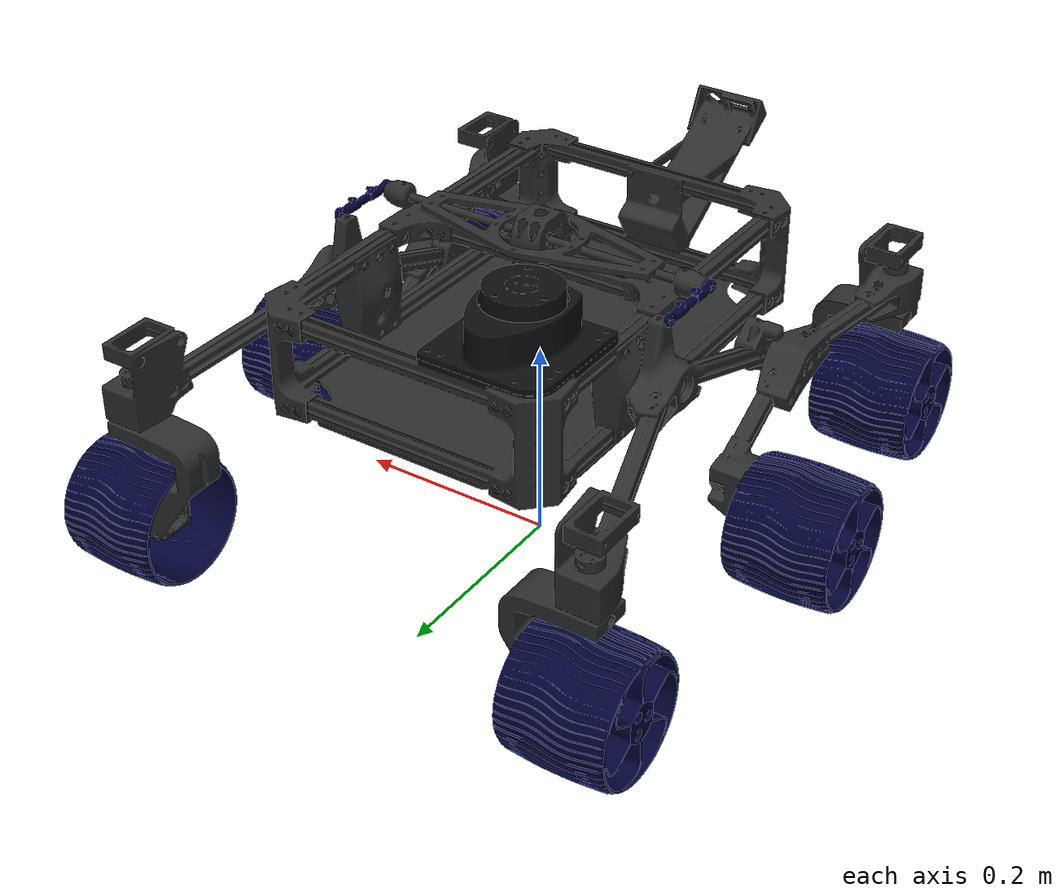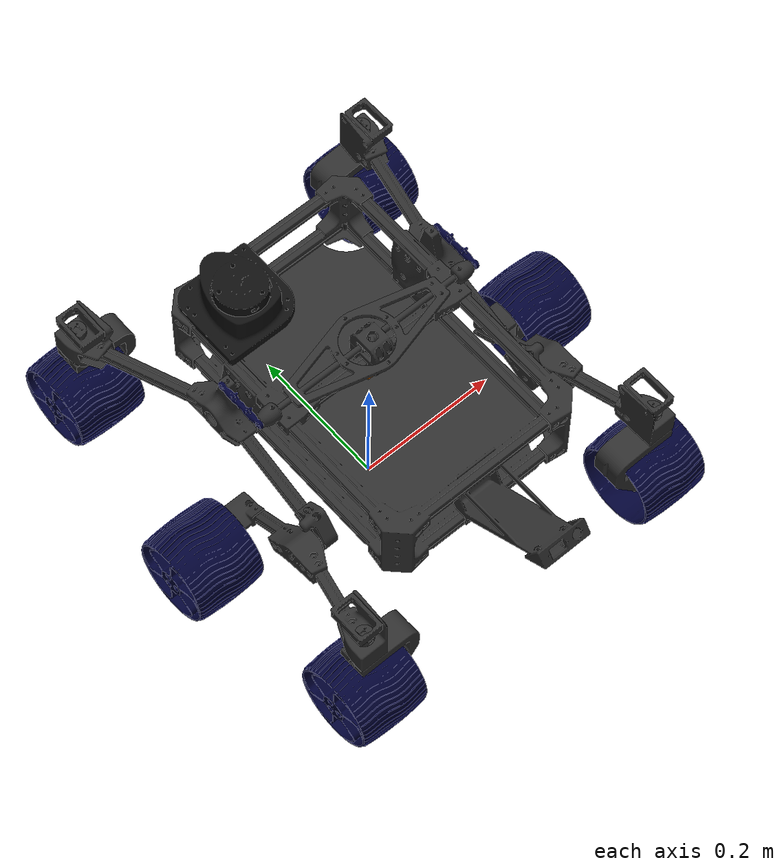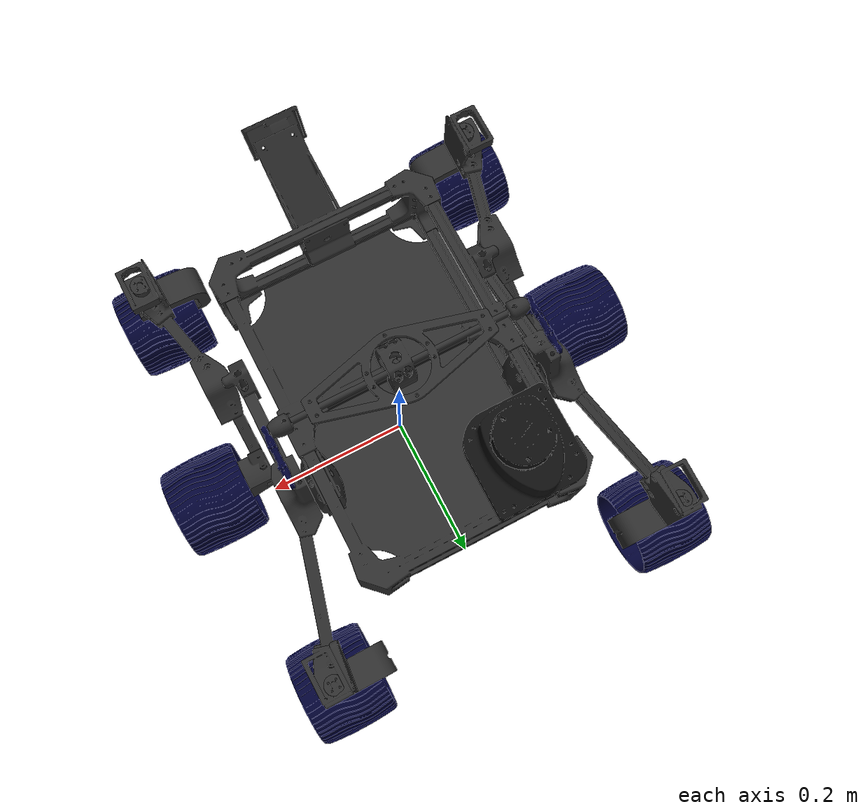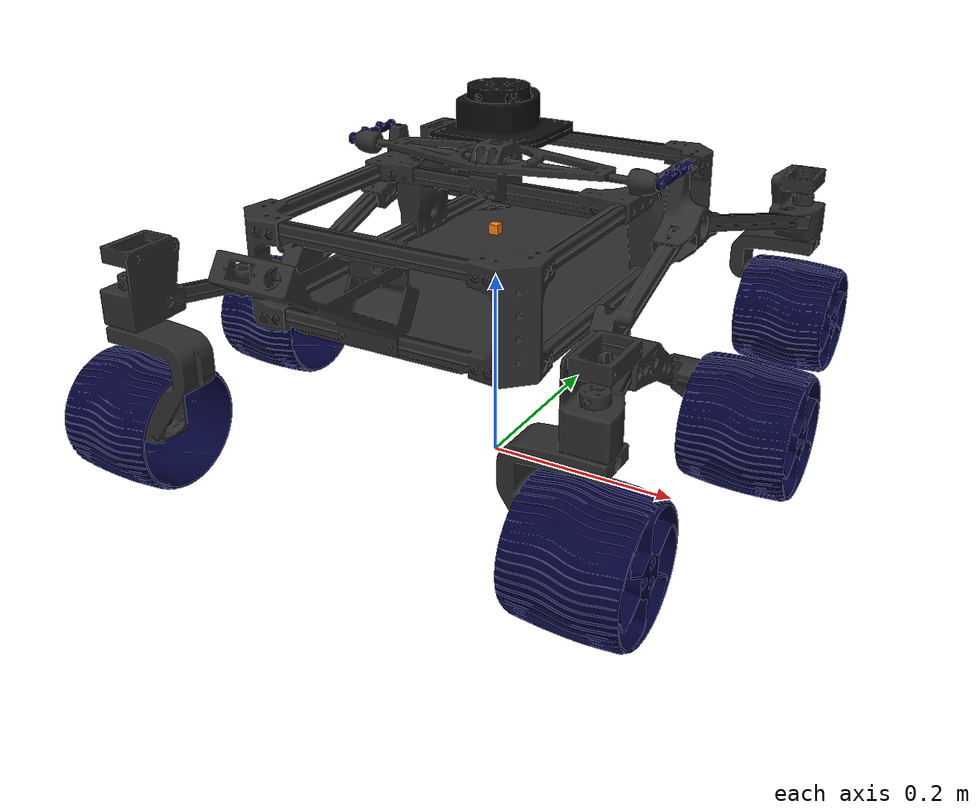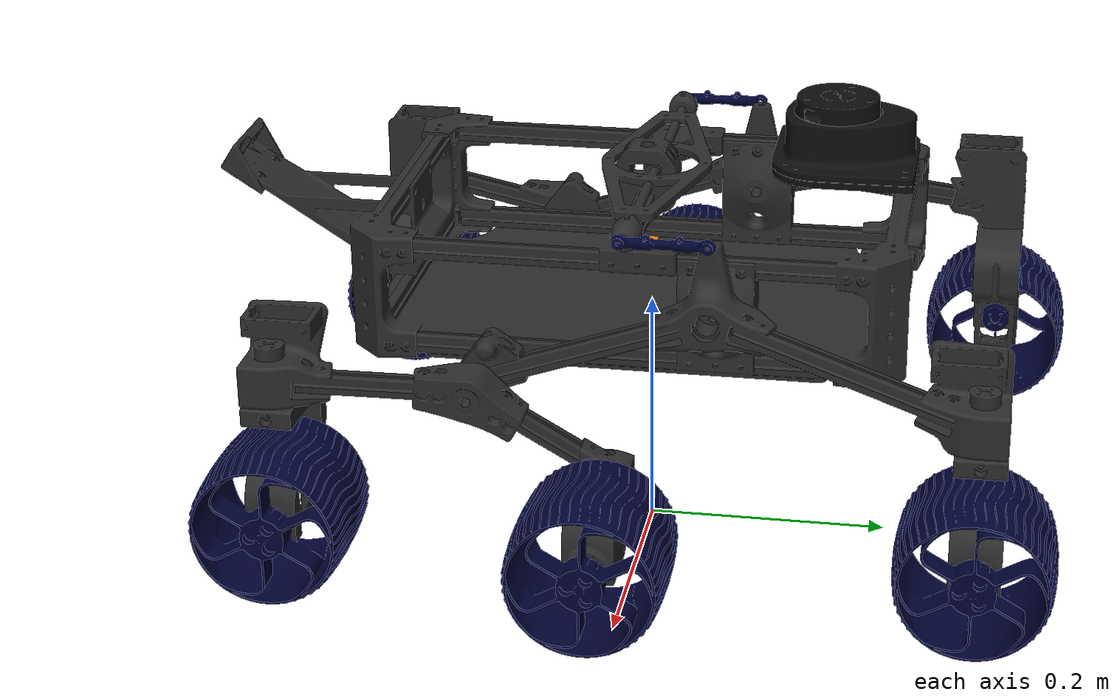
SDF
<sdf version="1.7">
 <world name="sawppy_playpen">
  <physics name="1ms" type="ignore">
   <max_step_size>0.001</max_step_size>
   <real_time_factor>1</real_time_factor>
  </physics>
  <plugin filename="gz-sim-physics-system" name="gz::sim::systems::Physics"/>
  <plugin filename="gz-sim-user-commands-system" name="gz::sim::systems::UserCommands"/>
  <plugin filename="gz-sim-scene-broadcaster-system" name="gz::sim::systems::SceneBroadcaster"/>
  <plugin filename="gz-sim-imu-system" name="gz::sim::systems::Imu"/>
  <scene><ambient>1.0 1.0 1.0</ambient><background>0.8 0.8 0.8</background></scene>
  <light type="directional" name="sun">
   <pose>0 0 10 0 0 0</pose>
   <diffuse>0.8 0.8 0.8 1</diffuse>
   <specular>0.8 0.8 0.8 1</specular>
   <attenuation>
    <range>1000</range>
    <constant>0.9</constant>
    <linear>0.01</linear>
    <quadratic>0.001</quadratic>
   </attenuation>
   <direction>-0.5 0.1 -0.9</direction>
  </light>
  <include><pose degrees="true">0 0 0.25 0 0 90</pose><uri>model://sawppy</uri></include>
 </world>
</sdf>

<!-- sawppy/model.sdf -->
<sdf version='1.7'>
  <model name='sawppy'>
    <pose>0 0 0.21 0 0 0</pose>
    <link name='base_link'>
      <inertial>
        <pose>0 0 0 0 0 0</pose>
        <mass>1.01</mass>
        <inertia>
          <ixx>0.00748967</ixx>
          <ixy>0</ixy>
          <ixz>0</ixz>
          <iyy>0.015773</iyy>
          <iyz>0</iyz>
          <izz>0.021821</izz>
        </inertia>
      </inertial>
      <collision name='base_link_collision'>
        <pose>0 0 0 0 0 0</pose>
        <geometry>
          <box>
            <size>0.01 0.01 0.01</size>
          </box>
        </geometry>
        <surface>
          <contact>
            <ode/>
          </contact>
          <friction>
            <ode/>
          </friction>
        </surface>
      </collision>
      <collision name='base_link_fixed_joint_lump__body_box_link_collision_1'>
        <pose>0 0 0 0 0 0</pose>
        <geometry>
          <box>
            <size>0.425 0.285 0.093</size>
          </box>
        </geometry>
        <surface>
          <contact>
            <ode/>
          </contact>
          <friction>
            <ode/>
          </friction>
        </surface>
      </collision>
      <visual name='base_link_visual'>
        <pose>0 0 0 0 0 0</pose>
        <geometry>
          <box>
            <size>0.01 0.01 0.01</size>
          </box>
        </geometry>
        <material>
          <ambient>1 0.5088 0.0468 1</ambient>
          <diffuse>1 0.5088 0.0468 1</diffuse>
          <specular>0.5 0.5 0.5 1</specular>
        </material>
      </visual>
      <visual name='base_link_fixed_joint_lump__body_box_link_visual_1'>
        <pose>0 0 0 0 0 0</pose>
        <geometry>
          <mesh>
            <scale>1 1 1</scale>
            <uri>model://sawppy/meshes/bases/body_box.stl</uri>
          </mesh>
        </geometry>
        <material>
          <ambient>0.175 0.175 0.175 1</ambient>
          <diffuse>0.175 0.175 0.175 1</diffuse>
          <specular>0.175 0.175 0.175 1</specular>
        </material>
      </visual>
      <velocity_decay/>
      <gravity>1</gravity>
      <velocity_decay/>
    </link>
    <joint name='diff_brace_joint' type='revolute'>
      <pose relative_to='base_link'>0 0 0.0681 0 0 0</pose>
      <parent>base_link</parent>
      <child>diff_brace_link</child>
      <axis>
        <xyz>0 0 1</xyz>
        <limit>
          <lower>-0.785398</lower>
          <upper>0.785398</upper>
          <effort>100</effort>
          <velocity>100</velocity>
        </limit>
        <dynamics>
          <spring_reference>0</spring_reference>
          <spring_stiffness>0</spring_stiffness>
          <damping>0.1</damping>
          <friction>0.1</friction>
        </dynamics>
      </axis>
      <physics>
        <provide_feedback>1</provide_feedback>
        <ode>
          <implicit_spring_damper>1</implicit_spring_damper>
          <cfm_damping>1</cfm_damping>
          <limit>
            <cfm>0</cfm>
            <erp>0.2</erp>
          </limit>
        </ode>
      </physics>
    </joint>
    <link name='diff_brace_link'>
      <pose relative_to='diff_brace_joint'>0 0 0 0 0 0</pose>
      <inertial>
        <pose degrees="true">0 0 0 0 0 90</pose>
        <mass>0.1</mass>
        <inertia>
          <ixx>3.75e-06</ixx>
          <ixy>0</ixy>
          <ixz>0</ixz>
          <iyy>0.000335208</iyy>
          <iyz>0</iyz>
          <izz>0.000335208</izz>
        </inertia>
      </inertial>
      <collision name='diff_brace_link_collision'>
        <pose degrees="true">0 0 0 0 0 90</pose>
        <geometry>
          <box>
            <size>0.2 0.015 0.015</size>
          </box>
        </geometry>
        <surface>
          <contact>
            <ode/>
          </contact>
          <friction>
            <ode/>
          </friction>
        </surface>
      </collision>
      <visual name='diff_brace_link_visual'>
        <pose>0 0 0 0 0 0</pose>
        <geometry>
          <mesh>
            <scale>1 1 1</scale>
            <uri>model://sawppy/meshes/bases/differential.stl</uri>
          </mesh>
        </geometry>
        <material>
          <ambient>0.175 0.175 0.175 1</ambient>
          <diffuse>0.175 0.175 0.175 1</diffuse>
          <specular>0.175 0.175 0.175 1</specular>
        </material>
      </visual>
      <gravity>1</gravity>
      <velocity_decay/>
    </link>
    <joint name='laser_joint' type='fixed'>
      <pose relative_to='base_link'>0.152 0.078 0.05 0 0 0</pose>
      <parent>base_link</parent>
      <child>laser</child>
      <axis>
        <dynamics>
          <spring_reference>0</spring_reference>
          <spring_stiffness>0</spring_stiffness>
        </dynamics>
        <xyz>0 0 1</xyz>
        <limit>
          <lower>-1e+16</lower>
          <upper>1e+16</upper>
        </limit>
      </axis>
      <physics>
        <ode>
          <limit>
            <cfm>0</cfm>
            <erp>0.2</erp>
          </limit>
        </ode>
      </physics>
    </joint>
    <link name='laser'>
      <pose relative_to='laser_joint'>0 0 0 0 0 0</pose>
      <inertial>
        <pose>0 0 0 0 0 0</pose>
        <mass>0.15</mass>
        <inertia>
          <ixx>9.09375e-05</ixx>
          <ixy>0</ixy>
          <ixz>0</ixz>
          <iyy>9.09375e-05</iyy>
          <iyz>0</iyz>
          <izz>9.1875e-05</izz>
        </inertia>
      </inertial>
      <collision name='laser_collision'>
        <pose>0 0 0 0 0 0</pose>
        <geometry>
          <cylinder>
            <length>0.06</length>
            <radius>0.035</radius>
          </cylinder>
        </geometry>
        <surface>
          <contact>
            <ode/>
          </contact>
          <friction>
            <ode/>
          </friction>
        </surface>
      </collision>
      <visual name='laser_visual'>
        <pose>0 0 0 0 0 0</pose>
        <geometry>
          <mesh>
            <scale>1 1 1</scale>
            <uri>model://sawppy/meshes/sensors/rplidar_a1_assembly_low.stl</uri>
          </mesh>
        </geometry>
        <material>
          <ambient>0.05 0.05 0.05 1</ambient>
          <diffuse>0.05 0.05 0.05 1</diffuse>
          <specular>0.001 0.001 0.001 1</specular>
        </material>
      </visual>
      <gravity>1</gravity>
      <velocity_decay/>
    </link>
    <joint name='left_rocker_joint' type='revolute'>
      <pose relative_to='base_link'>0.071 0.155 0.0118 0 0 0</pose>
      <parent>base_link</parent>
      <child>left_rocker_link</child>
      <axis>
        <xyz>0 1 0</xyz>
        <limit>
          <lower>0</lower>
          <upper>0</upper>
        </limit>
        <dynamics>
          <spring_reference>0</spring_reference>
          <spring_stiffness>0</spring_stiffness>
          <damping>0.1</damping>
          <friction>0.1</friction>
        </dynamics>
      </axis>
      <physics>
        <provide_feedback>1</provide_feedback>
        <ode>
          <implicit_spring_damper>1</implicit_spring_damper>
          <cfm_damping>1</cfm_damping>
          <limit>
            <cfm>0</cfm>
            <erp>0.2</erp>
          </limit>
        </ode>
      </physics>
    </joint>
    <link name='left_rocker_link'>
      <pose relative_to='left_rocker_joint'>0 0 0 0 0 0</pose>
      <inertial>
        <pose>0 0 0 0 0 0</pose>
        <mass>0.25</mass>
        <inertia>
          <ixx>9.375e-06</ixx>
          <ixy>0</ixy>
          <ixz>0</ixz>
          <iyy>0.000213021</iyy>
          <iyz>0</iyz>
          <izz>0.000213021</izz>
        </inertia>
      </inertial>
      <collision name='left_rocker_link_collision'>
        <pose>0 0 0 0 0 0</pose>
        <geometry>
          <box>
            <size>0.1 0.015 0.015</size>
          </box>
        </geometry>
        <surface>
          <contact>
            <ode/>
          </contact>
          <friction>
            <ode/>
          </friction>
        </surface>
      </collision>
      <visual name='left_rocker_link_visual'>
        <pose>0 0 0 0 0 0</pose>
        <geometry>
          <mesh>
            <scale>1 1 1</scale>
            <uri>model://sawppy/meshes/bases/left_rocker_asm.stl</uri>
          </mesh>
        </geometry>
        <material>
          <ambient>0.175 0.175 0.175 1</ambient>
          <diffuse>0.175 0.175 0.175 1</diffuse>
          <specular>0.175 0.175 0.175 1</specular>
        </material>
      </visual>
      <gravity>1</gravity>
      <velocity_decay/>
    </link>
    <joint name='front_left_steer_joint' type='revolute'>
      <pose relative_to='left_rocker_link'>0.2116 0.075 -0.0279 0 0 0</pose>
      <parent>left_rocker_link</parent>
      <child>front_left_steer_link</child>
      <axis>
        <xyz>0 0 1</xyz>
        <limit>
          <lower>-1e+16</lower>
          <upper>1e+16</upper>
        </limit>
        <dynamics>
          <spring_reference>0</spring_reference>
          <spring_stiffness>0</spring_stiffness>
          <damping>0.1</damping>
          <friction>0.1</friction>
        </dynamics>
      </axis>
      <physics>
        <provide_feedback>1</provide_feedback>
        <ode>
          <limit>
            <cfm>0</cfm>
            <erp>0.2</erp>
          </limit>
        </ode>
      </physics>
    </joint>
    <link name='front_left_steer_link'>
      <pose relative_to='front_left_steer_joint'>0 0 0 0 0 0</pose>
      <inertial>
        <pose>0 0 0 0 0 0</pose>
        <mass>0.25</mass>
        <inertia>
          <ixx>0.000416667</ixx>
          <ixy>0</ixy>
          <ixz>0</ixz>
          <iyy>0.000416667</iyy>
          <iyz>0</iyz>
          <izz>0.000416667</izz>
        </inertia>
      </inertial>
      <collision name='front_left_steer_link_collision'>
        <pose>0 0 0 0 0 0</pose>
        <geometry>
          <box>
            <size>0.1 0.1 0.1</size>
          </box>
        </geometry>
        <surface>
          <contact>
            <ode/>
          </contact>
          <friction>
            <ode/>
          </friction>
        </surface>
      </collision>
      <visual name='front_left_steer_link_visual'>
        <pose>0 0 0 0 0 0</pose>
        <geometry>
          <mesh>
            <scale>1 1 1</scale>
            <uri>model://sawppy/meshes/bases/front_left_steering_asm.stl</uri>
          </mesh>
        </geometry>
        <material>
          <ambient>0.175 0.175 0.175 1</ambient>
          <diffuse>0.175 0.175 0.175 1</diffuse>
          <specular>0.175 0.175 0.175 1</specular>
        </material>
      </visual>
      <gravity>1</gravity>
      <velocity_decay/>
    </link>
    <joint name='front_left_wheel_joint' type='revolute'>
      <pose relative_to='front_left_steer_link'>0 0 -0.132 0 0 0</pose>
      <parent>front_left_steer_link</parent>
      <child>front_left_wheel_link</child>
      <axis>
        <xyz>0 1 0</xyz>
        <limit>
          <lower>-1e+16</lower>
          <upper>1e+16</upper>
        </limit>
        <dynamics>
          <spring_reference>0</spring_reference>
          <spring_stiffness>0</spring_stiffness>
          <damping>0.01</damping>
          <friction>0.01</friction>
        </dynamics>
      </axis>
      <physics>
        <provide_feedback>1</provide_feedback>
        <ode>
          <limit>
            <cfm>0</cfm>
            <erp>0.2</erp>
          </limit>
        </ode>
      </physics>
    </joint>
    <link name='front_left_wheel_link'>
      <pose relative_to='front_left_wheel_joint'>0 0 0 0 0 0</pose>
      <inertial>
        <pose>0 0 0 0 0 0</pose>
        <mass>0.25</mass>
        <inertia>
          <ixx>0.000433333</ixx>
          <ixy>0</ixy>
          <ixz>0</ixz>
          <iyy>0.000433333</iyy>
          <iyz>0</iyz>
          <izz>0.00045</izz>
        </inertia>
      </inertial>
      <collision name='front_left_wheel_link_collision'>
        <pose degrees="true">0 0 0 90 0 0</pose>
        <geometry>
          <cylinder>
            <length>0.1</length>
            <radius>0.06</radius>
          </cylinder>
        </geometry>
        <surface>
          <contact>
            <ode/>
          </contact>
          <friction>
            <ode/>
          </friction>
        </surface>
      </collision>
      <visual name='front_left_wheel_link_visual'>
        <pose degrees="true">0 0 0 90 0 0</pose>
        <geometry>
          <mesh>
            <scale>1 1 1</scale>
            <uri>model://sawppy/meshes/wheels/wheel_asm.stl</uri>
          </mesh>
        </geometry>
        <material>
          <ambient>0.001 0.005 0.2 1</ambient>
          <diffuse>0.001 0.005 0.2 1</diffuse>
          <specular>0.01 0.01 0.01 1</specular>
        </material>
      </visual>
      <gravity>1</gravity>
      <velocity_decay/>
    </link>
    <joint name='left_bogie_joint' type='revolute'>
      <pose relative_to='left_rocker_link'>-0.181 0.025 -0.062 0 0 0</pose>
      <parent>left_rocker_link</parent>
      <child>left_bogie_link</child>
      <axis>
        <xyz>0 1 0</xyz>
        <limit>
          <lower>-0.785398</lower>
          <upper>0.785398</upper>
          <effort>100</effort>
          <velocity>100</velocity>
        </limit>
        <dynamics>
          <spring_reference>0</spring_reference>
          <spring_stiffness>0</spring_stiffness>
          <damping>0.1</damping>
          <friction>0.1</friction>
        </dynamics>
      </axis>
      <physics>
        <provide_feedback>1</provide_feedback>
        <ode>
          <implicit_spring_damper>1</implicit_spring_damper>
          <cfm_damping>1</cfm_damping>
          <limit>
            <cfm>0</cfm>
            <erp>0.2</erp>
          </limit>
        </ode>
      </physics>
    </joint>
    <link name='left_bogie_link'>
      <pose relative_to='left_bogie_joint'>0 0 0 0 0 0</pose>
      <inertial>
        <pose>0 0 0 0 0 0</pose>
        <mass>0.25</mass>
        <inertia>
          <ixx>9.375e-06</ixx>
          <ixy>0</ixy>
          <ixz>0</ixz>
          <iyy>0.000213021</iyy>
          <iyz>0</iyz>
          <izz>0.000213021</izz>
        </inertia>
      </inertial>
      <collision name='left_bogie_link_collision'>
        <pose>0 0 0 0 0 0</pose>
        <geometry>
          <box>
            <size>0.1 0.015 0.015</size>
          </box>
        </geometry>
        <surface>
          <contact>
            <ode/>
          </contact>
          <friction>
            <ode/>
          </friction>
        </surface>
      </collision>
      <visual name='left_bogie_link_visual'>
        <pose>0 0 0 0 0 0</pose>
        <geometry>
          <mesh>
            <scale>1 1 1</scale>
            <uri>model://sawppy/meshes/bases/left_bogie_asm.stl</uri>
          </mesh>
        </geometry>
        <material>
          <ambient>0.175 0.175 0.175 1</ambient>
          <diffuse>0.175 0.175 0.175 1</diffuse>
          <specular>0.175 0.175 0.175 1</specular>
        </material>
      </visual>
      <gravity>1</gravity>
      <velocity_decay/>
    </link>
    <joint name='back_left_steer_joint' type='revolute'>
      <pose relative_to='left_bogie_link'>-0.149 0.05 0.0338 0 0 0</pose>
      <parent>left_bogie_link</parent>
      <child>back_left_steer_link</child>
      <axis>
        <xyz>0 0 1</xyz>
        <limit>
          <lower>-1e+16</lower>
          <upper>1e+16</upper>
        </limit>
        <dynamics>
          <spring_reference>0</spring_reference>
          <spring_stiffness>0</spring_stiffness>
          <damping>0.1</damping>
          <friction>0.1</friction>
        </dynamics>
      </axis>
      <physics>
        <provide_feedback>1</provide_feedback>
        <ode>
          <limit>
            <cfm>0</cfm>
            <erp>0.2</erp>
          </limit>
        </ode>
      </physics>
    </joint>
    <link name='back_left_steer_link'>
      <pose relative_to='back_left_steer_joint'>0 0 0 0 0 0</pose>
      <inertial>
        <pose>0 0 0 0 0 0</pose>
        <mass>0.25</mass>
        <inertia>
          <ixx>0.000416667</ixx>
          <ixy>0</ixy>
          <ixz>0</ixz>
          <iyy>0.000416667</iyy>
          <iyz>0</iyz>
          <izz>0.000416667</izz>
        </inertia>
      </inertial>
      <collision name='back_left_steer_link_collision'>
        <pose>0 0 0 0 0 0</pose>
        <geometry>
          <box>
            <size>0.1 0.1 0.1</size>
          </box>
        </geometry>
        <surface>
          <contact>
            <ode/>
          </contact>
          <friction>
            <ode/>
          </friction>
        </surface>
      </collision>
      <visual name='back_left_steer_link_visual'>
        <pose>0 0 0 0 0 0</pose>
        <geometry>
          <mesh>
            <scale>1 1 1</scale>
            <uri>model://sawppy/meshes/bases/back_left_steering_asm.stl</uri>
          </mesh>
        </geometry>
        <material>
          <ambient>0.175 0.175 0.175 1</ambient>
          <diffuse>0.175 0.175 0.175 1</diffuse>
          <specular>0.175 0.175 0.175 1</specular>
        </material>
      </visual>
      <gravity>1</gravity>
      <velocity_decay/>
    </link>
    <joint name='back_left_wheel_joint' type='revolute'>
      <pose relative_to='back_left_steer_link'>0 0 -0.132 0 0 0</pose>
      <parent>back_left_steer_link</parent>
      <child>back_left_wheel_link</child>
      <axis>
        <xyz>0 1 0</xyz>
        <limit>
          <lower>-1e+16</lower>
          <upper>1e+16</upper>
        </limit>
        <dynamics>
          <spring_reference>0</spring_reference>
          <spring_stiffness>0</spring_stiffness>
          <damping>0.01</damping>
          <friction>0.01</friction>
        </dynamics>
      </axis>
      <physics>
        <provide_feedback>1</provide_feedback>
        <ode>
          <limit>
            <cfm>0</cfm>
            <erp>0.2</erp>
          </limit>
        </ode>
      </physics>
    </joint>
    <link name='back_left_wheel_link'>
      <pose relative_to='back_left_wheel_joint'>0 0 0 0 0 0</pose>
      <inertial>
        <pose>0 0 0 0 0 0</pose>
        <mass>0.25</mass>
        <inertia>
          <ixx>0.000433333</ixx>
          <ixy>0</ixy>
          <ixz>0</ixz>
          <iyy>0.000433333</iyy>
          <iyz>0</iyz>
          <izz>0.00045</izz>
        </inertia>
      </inertial>
      <collision name='back_left_wheel_link_collision'>
        <pose degrees="true">0 0 0 90 0 0</pose>
        <geometry>
          <cylinder>
            <length>0.1</length>
            <radius>0.06</radius>
          </cylinder>
        </geometry>
        <surface>
          <contact>
            <ode/>
          </contact>
          <friction>
            <ode/>
          </friction>
        </surface>
      </collision>
      <visual name='back_left_wheel_link_visual'>
        <pose degrees="true">0 0 0 90 0 0</pose>
        <geometry>
          <mesh>
            <scale>1 1 1</scale>
            <uri>model://sawppy/meshes/wheels/wheel_asm.stl</uri>
          </mesh>
        </geometry>
        <material>
          <ambient>0.001 0.005 0.2 1</ambient>
          <diffuse>0.001 0.005 0.2 1</diffuse>
          <specular>0.01 0.01 0.01 1</specular>
        </material>
      </visual>
      <gravity>1</gravity>
      <velocity_decay/>
    </link>
    <joint name='mid_left_wheel_joint' type='revolute'>
      <pose relative_to='left_bogie_link'>0.1063 0.0929 -0.0959 0 0 0</pose>
      <parent>left_bogie_link</parent>
      <child>mid_left_wheel_link</child>
      <axis>
        <xyz>0 1 0</xyz>
        <limit>
          <lower>-1e+16</lower>
          <upper>1e+16</upper>
        </limit>
        <dynamics>
          <spring_reference>0</spring_reference>
          <spring_stiffness>0</spring_stiffness>
          <damping>0.01</damping>
          <friction>0.01</friction>
        </dynamics>
      </axis>
      <physics>
        <provide_feedback>1</provide_feedback>
        <ode>
          <limit>
            <cfm>0</cfm>
            <erp>0.2</erp>
          </limit>
        </ode>
      </physics>
    </joint>
    <link name='mid_left_wheel_link'>
      <pose relative_to='mid_left_wheel_joint'>0 0 0 0 0 0</pose>
      <inertial>
        <pose>0 0 0 0 0 0</pose>
        <mass>0.25</mass>
        <inertia>
          <ixx>0.000433333</ixx>
          <ixy>0</ixy>
          <ixz>0</ixz>
          <iyy>0.000433333</iyy>
          <iyz>0</iyz>
          <izz>0.00045</izz>
        </inertia>
      </inertial>
      <collision name='mid_left_wheel_link_collision'>
        <pose degrees="true">0 0 0 90 0 0</pose>
        <geometry>
          <cylinder>
            <length>0.1</length>
            <radius>0.06</radius>
          </cylinder>
        </geometry>
        <surface>
          <contact>
            <ode/>
          </contact>
          <friction>
            <ode/>
          </friction>
        </surface>
      </collision>
      <visual name='mid_left_wheel_link_visual'>
        <pose degrees="true">0 0 0 90 0 0</pose>
        <geometry>
          <mesh>
            <scale>1 1 1</scale>
            <uri>model://sawppy/meshes/wheels/wheel_asm.stl</uri>
          </mesh>
        </geometry>
        <material>
          <ambient>0.001 0.005 0.2 1</ambient>
          <diffuse>0.001 0.005 0.2 1</diffuse>
          <specular>0.01 0.01 0.01 1</specular>
        </material>
      </visual>
      <gravity>1</gravity>
      <velocity_decay/>
    </link>
    <joint name='right_rocker_joint' type='revolute'>
      <pose relative_to='base_link'>0.071 -0.155 0.0118 0 0 0</pose>
      <parent>base_link</parent>
      <child>right_rocker_link</child>
      <axis>
        <xyz>0 1 0</xyz>
        <limit>
          <lower>0</lower>
          <upper>0</upper>
        </limit>
        <dynamics>
          <spring_reference>0</spring_reference>
          <spring_stiffness>0</spring_stiffness>
          <damping>0.1</damping>
          <friction>0.1</friction>
        </dynamics>
      </axis>
      <physics>
        <provide_feedback>1</provide_feedback>
        <ode>
          <implicit_spring_damper>1</implicit_spring_damper>
          <cfm_damping>1</cfm_damping>
          <limit>
            <cfm>0</cfm>
            <erp>0.2</erp>
          </limit>
        </ode>
      </physics>
    </joint>
    <link name='right_rocker_link'>
      <pose relative_to='right_rocker_joint'>0 0 0 0 0 0</pose>
      <inertial>
        <pose>0 0 0 0 0 0</pose>
        <mass>0.25</mass>
        <inertia>
          <ixx>9.375e-06</ixx>
          <ixy>0</ixy>
          <ixz>0</ixz>
          <iyy>0.000213021</iyy>
          <iyz>0</iyz>
          <izz>0.000213021</izz>
        </inertia>
      </inertial>
      <collision name='right_rocker_link_collision'>
        <pose>0 0 0 0 0 0</pose>
        <geometry>
          <box>
            <size>0.1 0.015 0.015</size>
          </box>
        </geometry>
        <surface>
          <contact>
            <ode/>
          </contact>
          <friction>
            <ode/>
          </friction>
        </surface>
      </collision>
      <visual name='right_rocker_link_visual'>
        <pose>0 0 0 0 0 0</pose>
        <geometry>
          <mesh>
            <scale>1 1 1</scale>
            <uri>model://sawppy/meshes/bases/right_rocker_asm.stl</uri>
          </mesh>
        </geometry>
        <material>
          <ambient>0.175 0.175 0.175 1</ambient>
          <diffuse>0.175 0.175 0.175 1</diffuse>
          <specular>0.175 0.175 0.175 1</specular>
        </material>
      </visual>
      <gravity>1</gravity>
      <velocity_decay/>
    </link>
    <joint name='front_right_steer_joint' type='revolute'>
      <pose relative_to='right_rocker_link'>0.2116 -0.075 -0.0279 0 0 0</pose>
      <parent>right_rocker_link</parent>
      <child>front_right_steer_link</child>
      <axis>
        <xyz>0 0 1</xyz>
        <limit>
          <lower>-1e+16</lower>
          <upper>1e+16</upper>
        </limit>
        <dynamics>
          <spring_reference>0</spring_reference>
          <spring_stiffness>0</spring_stiffness>
          <damping>0.1</damping>
          <friction>0.1</friction>
        </dynamics>
      </axis>
      <physics>
        <provide_feedback>1</provide_feedback>
        <ode>
          <limit>
            <cfm>0</cfm>
            <erp>0.2</erp>
          </limit>
        </ode>
      </physics>
    </joint>
    <link name='front_right_steer_link'>
      <pose relative_to='front_right_steer_joint'>0 0 0 0 0 0</pose>
      <inertial>
        <pose>0 0 0 0 0 0</pose>
        <mass>0.25</mass>
        <inertia>
          <ixx>0.000416667</ixx>
          <ixy>0</ixy>
          <ixz>0</ixz>
          <iyy>0.000416667</iyy>
          <iyz>0</iyz>
          <izz>0.000416667</izz>
        </inertia>
      </inertial>
      <collision name='front_right_steer_link_collision'>
        <pose>0 0 0 0 0 0</pose>
        <geometry>
          <box>
            <size>0.1 0.1 0.1</size>
          </box>
        </geometry>
        <surface>
          <contact>
            <ode/>
          </contact>
          <friction>
            <ode/>
          </friction>
        </surface>
      </collision>
      <visual name='front_right_steer_link_visual'>
        <pose>0 0 0 0 0 0</pose>
        <geometry>
          <mesh>
            <scale>1 1 1</scale>
            <uri>model://sawppy/meshes/bases/front_right_steering_asm.stl</uri>
          </mesh>
        </geometry>
        <material>
          <ambient>0.175 0.175 0.175 1</ambient>
          <diffuse>0.175 0.175 0.175 1</diffuse>
          <specular>0.175 0.175 0.175 1</specular>
        </material>
      </visual>
      <gravity>1</gravity>
      <velocity_decay/>
    </link>
    <joint name='front_right_wheel_joint' type='revolute'>
      <pose relative_to='front_right_steer_link'>0 0 -0.132 0 0 0</pose>
      <parent>front_right_steer_link</parent>
      <child>front_right_wheel_link</child>
      <axis>
        <xyz>0 1 0</xyz>
        <limit>
          <lower>-1e+16</lower>
          <upper>1e+16</upper>
        </limit>
        <dynamics>
          <spring_reference>0</spring_reference>
          <spring_stiffness>0</spring_stiffness>
          <damping>0.01</damping>
          <friction>0.01</friction>
        </dynamics>
      </axis>
      <physics>
        <provide_feedback>1</provide_feedback>
        <ode>
          <limit>
            <cfm>0</cfm>
            <erp>0.2</erp>
          </limit>
        </ode>
      </physics>
    </joint>
    <link name='front_right_wheel_link'>
      <pose relative_to='front_right_wheel_joint'>0 0 0 0 0 0</pose>
      <inertial>
        <pose>0 0 0 0 0 0</pose>
        <mass>0.25</mass>
        <inertia>
          <ixx>0.000433333</ixx>
          <ixy>0</ixy>
          <ixz>0</ixz>
          <iyy>0.000433333</iyy>
          <iyz>0</iyz>
          <izz>0.00045</izz>
        </inertia>
      </inertial>
      <collision name='front_right_wheel_link_collision'>
        <pose degrees="true">0 0 0 -90 0 0</pose>
        <geometry>
          <cylinder>
            <length>0.1</length>
            <radius>0.06</radius>
          </cylinder>
        </geometry>
        <surface>
          <contact>
            <ode/>
          </contact>
          <friction>
            <ode/>
          </friction>
        </surface>
      </collision>
      <visual name='front_right_wheel_link_visual'>
        <pose degrees="true">0 0 0 -90 0 0</pose>
        <geometry>
          <mesh>
            <scale>1 1 1</scale>
            <uri>model://sawppy/meshes/wheels/wheel_asm.stl</uri>
          </mesh>
        </geometry>
        <material>
          <ambient>0.001 0.005 0.2 1</ambient>
          <diffuse>0.001 0.005 0.2 1</diffuse>
          <specular>0.01 0.01 0.01 1</specular>
        </material>
      </visual>
      <gravity>1</gravity>
      <velocity_decay/>
    </link>
    <joint name='right_bogie_joint' type='revolute'>
      <pose relative_to='right_rocker_link'>-0.181 -0.025 -0.062 0 0 0</pose>
      <parent>right_rocker_link</parent>
      <child>right_bogie_link</child>
      <axis>
        <xyz>0 1 0</xyz>
        <limit>
          <lower>-0.785398</lower>
          <upper>0.785398</upper>
          <effort>100</effort>
          <velocity>100</velocity>
        </limit>
        <dynamics>
          <spring_reference>0</spring_reference>
          <spring_stiffness>0</spring_stiffness>
          <damping>0.1</damping>
          <friction>0.1</friction>
        </dynamics>
      </axis>
      <physics>
        <provide_feedback>1</provide_feedback>
        <ode>
          <implicit_spring_damper>1</implicit_spring_damper>
          <cfm_damping>1</cfm_damping>
          <limit>
            <cfm>0</cfm>
            <erp>0.2</erp>
          </limit>
        </ode>
      </physics>
    </joint>
    <link name='right_bogie_link'>
      <pose relative_to='right_bogie_joint'>0 0 0 0 0 0</pose>
      <inertial>
        <pose>0 0 0 0 0 0</pose>
        <mass>0.25</mass>
        <inertia>
          <ixx>9.375e-06</ixx>
          <ixy>0</ixy>
          <ixz>0</ixz>
          <iyy>0.000213021</iyy>
          <iyz>0</iyz>
          <izz>0.000213021</izz>
        </inertia>
      </inertial>
      <collision name='right_bogie_link_collision'>
        <pose>0 0 0 0 0 0</pose>
        <geometry>
          <box>
            <size>0.1 0.015 0.015</size>
          </box>
        </geometry>
        <surface>
          <contact>
            <ode/>
          </contact>
          <friction>
            <ode/>
          </friction>
        </surface>
      </collision>
      <visual name='right_bogie_link_visual'>
        <pose>0 0 0 0 0 0</pose>
        <geometry>
          <mesh>
            <scale>1 1 1</scale>
            <uri>model://sawppy/meshes/bases/right_bogie_asm.stl</uri>
          </mesh>
        </geometry>
        <material>
          <ambient>0.175 0.175 0.175 1</ambient>
          <diffuse>0.175 0.175 0.175 1</diffuse>
          <specular>0.175 0.175 0.175 1</specular>
        </material>
      </visual>
      <gravity>1</gravity>
      <velocity_decay/>
    </link>
    <joint name='back_right_steer_joint' type='revolute'>
      <pose relative_to='right_bogie_link'>-0.149 -0.05 0.0338 0 0 0</pose>
      <parent>right_bogie_link</parent>
      <child>back_right_steer_link</child>
      <axis>
        <xyz>0 0 1</xyz>
        <limit>
          <lower>-1e+16</lower>
          <upper>1e+16</upper>
        </limit>
        <dynamics>
          <spring_reference>0</spring_reference>
          <spring_stiffness>0</spring_stiffness>
          <damping>0.1</damping>
          <friction>0.1</friction>
        </dynamics>
      </axis>
      <physics>
        <provide_feedback>1</provide_feedback>
        <ode>
          <limit>
            <cfm>0</cfm>
            <erp>0.2</erp>
          </limit>
        </ode>
      </physics>
    </joint>
    <link name='back_right_steer_link'>
      <pose relative_to='back_right_steer_joint'>0 0 0 0 0 0</pose>
      <inertial>
        <pose>0 0 0 0 0 0</pose>
        <mass>0.25</mass>
        <inertia>
          <ixx>0.000416667</ixx>
          <ixy>0</ixy>
          <ixz>0</ixz>
          <iyy>0.000416667</iyy>
          <iyz>0</iyz>
          <izz>0.000416667</izz>
        </inertia>
      </inertial>
      <collision name='back_right_steer_link_collision'>
        <pose>0 0 0 0 0 0</pose>
        <geometry>
          <box>
            <size>0.1 0.1 0.1</size>
          </box>
        </geometry>
        <surface>
          <contact>
            <ode/>
          </contact>
          <friction>
            <ode/>
          </friction>
        </surface>
      </collision>
      <visual name='back_right_steer_link_visual'>
        <pose>0 0 0 0 0 0</pose>
        <geometry>
          <mesh>
            <scale>1 1 1</scale>
            <uri>model://sawppy/meshes/bases/back_right_steering_asm.stl</uri>
          </mesh>
        </geometry>
        <material>
          <ambient>0.175 0.175 0.175 1</ambient>
          <diffuse>0.175 0.175 0.175 1</diffuse>
          <specular>0.175 0.175 0.175 1</specular>
        </material>
      </visual>
      <gravity>1</gravity>
      <velocity_decay/>
    </link>
    <joint name='back_right_wheel_joint' type='revolute'>
      <pose relative_to='back_right_steer_link'>0 0 -0.132 0 0 0</pose>
      <parent>back_right_steer_link</parent>
      <child>back_right_wheel_link</child>
      <axis>
        <xyz>0 1 0</xyz>
        <limit>
          <lower>-1e+16</lower>
          <upper>1e+16</upper>
        </limit>
        <dynamics>
          <spring_reference>0</spring_reference>
          <spring_stiffness>0</spring_stiffness>
          <damping>0.01</damping>
          <friction>0.01</friction>
        </dynamics>
      </axis>
      <physics>
        <provide_feedback>1</provide_feedback>
        <ode>
          <limit>
            <cfm>0</cfm>
            <erp>0.2</erp>
          </limit>
        </ode>
      </physics>
    </joint>
    <link name='back_right_wheel_link'>
      <pose relative_to='back_right_wheel_joint'>0 0 0 0 0 0</pose>
      <inertial>
        <pose>0 0 0 0 0 0</pose>
        <mass>0.25</mass>
        <inertia>
          <ixx>0.000433333</ixx>
          <ixy>0</ixy>
          <ixz>0</ixz>
          <iyy>0.000433333</iyy>
          <iyz>0</iyz>
          <izz>0.00045</izz>
        </inertia>
      </inertial>
      <collision name='back_right_wheel_link_collision'>
        <pose degrees="true">0 0 0 -90 0 0</pose>
        <geometry>
          <cylinder>
            <length>0.1</length>
            <radius>0.06</radius>
          </cylinder>
        </geometry>
        <surface>
          <contact>
            <ode/>
          </contact>
          <friction>
            <ode/>
          </friction>
        </surface>
      </collision>
      <visual name='back_right_wheel_link_visual'>
        <pose degrees="true">0 0 0 -90 0 0</pose>
        <geometry>
          <mesh>
            <scale>1 1 1</scale>
            <uri>model://sawppy/meshes/wheels/wheel_asm.stl</uri>
          </mesh>
        </geometry>
        <material>
          <ambient>0.001 0.005 0.2 1</ambient>
          <diffuse>0.001 0.005 0.2 1</diffuse>
          <specular>0.01 0.01 0.01 1</specular>
        </material>
      </visual>
      <gravity>1</gravity>
      <velocity_decay/>
    </link>
    <joint name='mid_right_wheel_joint' type='revolute'>
      <pose relative_to='right_bogie_link'>0.1063 -0.0929 -0.0959 0 0 0</pose>
      <parent>right_bogie_link</parent>
      <child>mid_right_wheel_link</child>
      <axis>
        <xyz>0 1 0</xyz>
        <limit>
          <lower>-1e+16</lower>
          <upper>1e+16</upper>
        </limit>
        <dynamics>
          <spring_reference>0</spring_reference>
          <spring_stiffness>0</spring_stiffness>
          <damping>0.01</damping>
          <friction>0.01</friction>
        </dynamics>
      </axis>
      <physics>
        <provide_feedback>1</provide_feedback>
        <ode>
          <limit>
            <cfm>0</cfm>
            <erp>0.2</erp>
          </limit>
        </ode>
      </physics>
    </joint>
    <link name='mid_right_wheel_link'>
      <pose relative_to='mid_right_wheel_joint'>0 0 0 0 0 0</pose>
      <inertial>
        <pose>0 0 0 0 0 0</pose>
        <mass>0.25</mass>
        <inertia>
          <ixx>0.000433333</ixx>
          <ixy>0</ixy>
          <ixz>0</ixz>
          <iyy>0.000433333</iyy>
          <iyz>0</iyz>
          <izz>0.00045</izz>
        </inertia>
      </inertial>
      <collision name='mid_right_wheel_link_collision'>
        <pose degrees="true">0 0 0 -90 0 0</pose>
        <geometry>
          <cylinder>
            <length>0.1</length>
            <radius>0.06</radius>
          </cylinder>
        </geometry>
        <surface>
          <contact>
            <ode/>
          </contact>
          <friction>
            <ode/>
          </friction>
        </surface>
      </collision>
      <visual name='mid_right_wheel_link_visual'>
        <pose degrees="true">0 0 0 -90 0 0</pose>
        <geometry>
          <mesh>
            <scale>1 1 1</scale>
            <uri>model://sawppy/meshes/wheels/wheel_asm.stl</uri>
          </mesh>
        </geometry>
        <material>
          <ambient>0.001 0.005 0.2 1</ambient>
          <diffuse>0.001 0.005 0.2 1</diffuse>
          <specular>0.01 0.01 0.01 1</specular>
        </material>
      </visual>
      <gravity>1</gravity>
      <velocity_decay/>
    </link>
    <link name='left_turnbuckle_link'>
      <pose>0.035 0.17 0.07 0 0 0</pose>
      <visual name='left_turnbuckle_visual'>
        <pose degrees="true">0 0 0 90 0 0</pose>
        <geometry>
          <mesh>
            <uri>model://sawppy/meshes/bases/turnbuckle.stl</uri>
          </mesh>
        </geometry>
        <material>
          <ambient>0.001 0.005 0.2 1</ambient>
          <diffuse>0.001 0.005 0.2 1</diffuse>
          <specular>0.01 0.01 0.01 1</specular>
        </material>
      </visual>
      <collision name='left_turnbuckle_collision'>
        <pose degrees="true">0 0 0 0 90 0</pose>
        <geometry>
          <cylinder>
            <length>0.07</length>
            <radius>0.0025</radius>
          </cylinder>
        </geometry>
      </collision>
      <inertial>
        <mass>0.01</mass>
        <inertia>
          <ixx>0.0001</ixx>
          <ixy>0</ixy>
          <ixz>0</ixz>
          <iyy>0.0001</iyy>
          <iyz>0</iyz>
          <izz>0.0001</izz>
        </inertia>
      </inertial>
    </link>
    <joint name='front_left_turnbuckle_joint' type='fixed'>
      <pose>0.035 0 0 0 0 0</pose>
      <parent>left_rocker_link</parent>
      <child>left_turnbuckle_link</child>
    </joint>
    <link name='right_turnbuckle_link'>
      <pose>0.035 -0.17 0.07 0 0 0</pose>
      <visual name='right_turnbuckle_visual'>
        <pose degrees="true">0 0 0 90 0 0</pose>
        <geometry>
          <mesh>
            <uri>model://sawppy/meshes/bases/turnbuckle.stl</uri>
          </mesh>
        </geometry>
        <material>
          <ambient>0.001 0.005 0.2 1</ambient>
          <diffuse>0.001 0.005 0.2 1</diffuse>
          <specular>0.01 0.01 0.01 1</specular>
        </material>
      </visual>
      <collision name='right_turnbuckle_collision'>
        <pose degrees="true">0 0 0 0 90 0</pose>
        <geometry>
          <cylinder>
            <length>0.07</length>
            <radius>0.0025</radius>
          </cylinder>
        </geometry>
      </collision>
      <inertial>
        <mass>0.01</mass>
        <inertia>
          <ixx>0.0001</ixx>
          <ixy>0</ixy>
          <ixz>0</ixz>
          <iyy>0.0001</iyy>
          <iyz>0</iyz>
          <izz>0.0001</izz>
        </inertia>
      </inertial>
    </link>
    <joint name='front_right_turnbuckle_joint' type='fixed'>
      <pose>0.035 0 0 0 0 0</pose>
      <parent>right_rocker_link</parent>
      <child>right_turnbuckle_link</child>
    </joint>

    <!-- sensors -->
    <link name='imu_link'>
      <inertial>
        <pose>0 0 0 0 0 0</pose>
        <mass>0.15</mass>
        <inertia>
          <ixx>0.00002</ixx>
          <ixy>0</ixy>
          <ixz>0</ixz>
          <iyy>0.00002</iyy>
          <iyz>0</iyz>
          <izz>0.00002</izz>
        </inertia>
      </inertial>
      <sensor name="imu_sensor" type="imu">
        <pose degrees="true">0 0 0 180 0 0</pose>
        <always_on>1</always_on>
        <update_rate>1000.0</update_rate>
      </sensor>
    </link>
    <joint name='imu_joint' type='revolute'>
      <child>imu_link</child>
      <parent>base_link</parent>
      <axis>
        <xyz>0 0 1</xyz>
        <limit>
          <lower>0</lower>
          <upper>0</upper>
          <effort>0</effort>
          <velocity>0</velocity>
        </limit>
        <dynamics>
          <damping>1.0</damping>
        </dynamics>
      </axis>
    </joint>

    <!-- plugins -->
    <plugin filename="gz-sim-joint-state-publisher-system"
      name="gz::sim::systems::JointStatePublisher">
    </plugin>
    <plugin filename="gz-sim-apply-joint-force-system"
      name="gz::sim::systems::ApplyJointForce">
      <joint_name>front_left_wheel_joint</joint_name>
    </plugin>
    <plugin filename="gz-sim-apply-joint-force-system"
      name="gz::sim::systems::ApplyJointForce">
      <joint_name>front_right_wheel_joint</joint_name>
    </plugin>
    <plugin filename="gz-sim-apply-joint-force-system"
      name="gz::sim::systems::ApplyJointForce">
      <joint_name>mid_left_wheel_joint</joint_name>
    </plugin>
    <plugin filename="gz-sim-apply-joint-force-system"
      name="gz::sim::systems::ApplyJointForce">
      <joint_name>mid_right_wheel_joint</joint_name>
    </plugin>
    <plugin filename="gz-sim-apply-joint-force-system"
      name="gz::sim::systems::ApplyJointForce">
      <joint_name>back_left_wheel_joint</joint_name>
    </plugin>
    <plugin filename="gz-sim-apply-joint-force-system"
      name="gz::sim::systems::ApplyJointForce">
      <joint_name>back_right_wheel_joint</joint_name>
    </plugin>
    <plugin filename="gz-sim-apply-joint-force-system"
      name="gz::sim::systems::ApplyJointForce">
      <joint_name>front_left_steer_joint</joint_name>
    </plugin>
    <plugin filename="gz-sim-apply-joint-force-system"
      name="gz::sim::systems::ApplyJointForce">
      <joint_name>front_right_steer_joint</joint_name>
    </plugin>
    <plugin filename="gz-sim-apply-joint-force-system"
      name="gz::sim::systems::ApplyJointForce">
      <joint_name>back_left_steer_joint</joint_name>
    </plugin>
    <plugin filename="gz-sim-apply-joint-force-system"
      name="gz::sim::systems::ApplyJointForce">
      <joint_name>back_right_steer_joint</joint_name>
    </plugin>

    <plugin name="ArduPilotPlugin" filename="ArduPilotPlugin">
      <!-- Port settings -->
      <fdm_addr>127.0.0.1</fdm_addr>
      <fdm_port_in>9002</fdm_port_in>
      <connectionTimeoutMaxCount>5</connectionTimeoutMaxCount>
      <lock_step>1</lock_step>

      <modelXYZToAirplaneXForwardZDown degrees="true">0 0 0 180 0 0</modelXYZToAirplaneXForwardZDown>
      <gazeboXYZToNED degrees="true">0 0 0 180 0 90</gazeboXYZToNED>

      <!-- Sensors -->
      <imuName>imu_sensor</imuName>

      <!-- Wheel servos -->

      <!--
        SERVO1_FUNCTION 94 (Script 1)
        SERVO1_MIN 1000
        SERVO1_MAX 2000
      -->
      <control channel="0">
        <jointName>front_left_wheel_joint</jointName>
        <useForce>1</useForce>
        <multiplier>12.5</multiplier>
        <offset>-0.5</offset>
        <type>VELOCITY</type>
        <p_gain>0.2</p_gain>
        <i_gain>0</i_gain>
        <d_gain>0</d_gain>
        <i_max>-1</i_max>
        <i_min>0</i_min>
        <cmd_max>5</cmd_max>
        <cmd_min>-5</cmd_min>
      </control>

      <!--
        SERVO2_FUNCTION 95 (Script 2)
        SERVO2_MIN 1000
        SERVO2_MAX 2000
      -->
      <control channel="1">
        <jointName>front_right_wheel_joint</jointName>
        <useForce>1</useForce>
        <multiplier>12.5</multiplier>
        <offset>-0.5</offset>
        <type>VELOCITY</type>
        <p_gain>0.2</p_gain>
        <i_gain>0</i_gain>
        <d_gain>0</d_gain>
        <i_max>-1</i_max>
        <i_min>0</i_min>
        <cmd_max>5</cmd_max>
        <cmd_min>-5</cmd_min>
      </control>

      <!--
        SERVO3_FUNCTION 96 (Script 3)
        SERVO3_MIN 1000
        SERVO3_MAX 2000
      -->
      <control channel="2">
        <jointName>mid_left_wheel_joint</jointName>
        <useForce>1</useForce>
        <multiplier>12.5</multiplier>
        <offset>-0.5</offset>
        <type>VELOCITY</type>
        <p_gain>0.2</p_gain>
        <i_gain>0</i_gain>
        <d_gain>0</d_gain>
        <i_max>-1</i_max>
        <i_min>0</i_min>
        <cmd_max>5</cmd_max>
        <cmd_min>-5</cmd_min>
      </control>

      <!--
        SERVO4_FUNCTION 97 (Script 4)
        SERVO4_MIN 1000
        SERVO4_MAX 2000
      -->
      <control channel="3">
        <jointName>mid_right_wheel_joint</jointName>
        <useForce>1</useForce>
        <multiplier>12.5</multiplier>
        <offset>-0.5</offset>
        <type>VELOCITY</type>
        <p_gain>0.2</p_gain>
        <i_gain>0</i_gain>
        <d_gain>0</d_gain>
        <i_max>-1</i_max>
        <i_min>0</i_min>
        <cmd_max>5</cmd_max>
        <cmd_min>-5</cmd_min>
      </control>

      <!--
        SERVO5_FUNCTION 98 (Script 5)
        SERVO5_MIN 1000
        SERVO5_MAX 2000
      -->
      <control channel="4">
        <jointName>back_left_wheel_joint</jointName>
        <useForce>1</useForce>
        <multiplier>12.5</multiplier>
        <offset>-0.5</offset>
        <type>VELOCITY</type>
        <p_gain>0.2</p_gain>
        <i_gain>0</i_gain>
        <d_gain>0</d_gain>
        <i_max>-1</i_max>
        <i_min>0</i_min>
        <cmd_max>5</cmd_max>
        <cmd_min>-5</cmd_min>
      </control>

      <!--
        SERVO6_FUNCTION 99 (Script 6)
        SERVO6_MIN 1000
        SERVO6_MAX 2000
      -->
      <control channel="5">
        <jointName>back_right_wheel_joint</jointName>
        <useForce>1</useForce>
        <multiplier>12.5</multiplier>
        <offset>-0.5</offset>
        <type>VELOCITY</type>
        <p_gain>0.2</p_gain>
        <i_gain>0</i_gain>
        <d_gain>0</d_gain>
        <i_max>-1</i_max>
        <i_min>0</i_min>
        <cmd_max>5</cmd_max>
        <cmd_min>-5</cmd_min>
      </control>

      <!-- Steer servos -->

      <!--
        SERVO7_FUNCTION 100 (Script 7)
        SERVO7_MIN 1000
        SERVO7_MAX 2000
      -->
      <control channel="6">
        <jointName>front_left_steer_joint</jointName>
        <useForce>1</useForce>
        <multiplier>6.283185</multiplier>
        <offset>-0.5</offset>
        <type>POSITION</type>
        <p_gain>5</p_gain>
        <i_gain>0</i_gain>
        <d_gain>0</d_gain>
        <i_max>-1</i_max>
        <i_min>0</i_min>
        <cmd_max>10</cmd_max>
        <cmd_min>-10</cmd_min>
      </control>

      <!--
        SERVO8_FUNCTION 101 (Script 8)
        SERVO8_MIN 1000
        SERVO8_MAX 2000
      -->
      <control channel="7">
        <jointName>front_right_steer_joint</jointName>
        <useForce>1</useForce>
        <multiplier>6.283185</multiplier>
        <offset>-0.5</offset>
        <type>POSITION</type>
        <p_gain>5</p_gain>
        <i_gain>0</i_gain>
        <d_gain>0</d_gain>
        <i_max>-1</i_max>
        <i_min>0</i_min>
        <cmd_max>10</cmd_max>
        <cmd_min>-10</cmd_min>
      </control>

      <!--
        SERVO9_FUNCTION 102 (Script 9)
        SERVO9_MIN 1000
        SERVO9_MAX 2000
      -->
      <control channel="8">
        <jointName>back_left_steer_joint</jointName>
        <useForce>1</useForce>
        <multiplier>6.283185</multiplier>
        <offset>-0.5</offset>
        <type>POSITION</type>
        <p_gain>5</p_gain>
        <i_gain>0</i_gain>
        <d_gain>0</d_gain>
        <i_max>-1</i_max>
        <i_min>0</i_min>
        <cmd_max>10</cmd_max>
        <cmd_min>-10</cmd_min>
      </control>

      <!--
        SERVO10_FUNCTION 103 (Script 10)
        SERVO10_MIN 1000
        SERVO10_MAX 2000
      -->
      <control channel="9">
        <jointName>back_right_steer_joint</jointName>
        <useForce>1</useForce>
        <multiplier>6.283185</multiplier>
        <offset>-0.5</offset>
        <type>POSITION</type>
        <p_gain>5</p_gain>
        <i_gain>0</i_gain>
        <d_gain>0</d_gain>
        <i_max>-1</i_max>
        <i_min>0</i_min>
        <cmd_max>10</cmd_max>
        <cmd_min>-10</cmd_min>
      </control>
    </plugin>

  </model>
</sdf>
